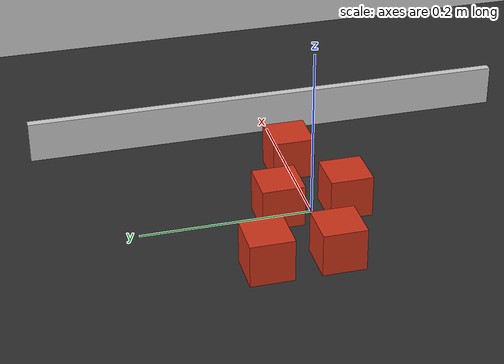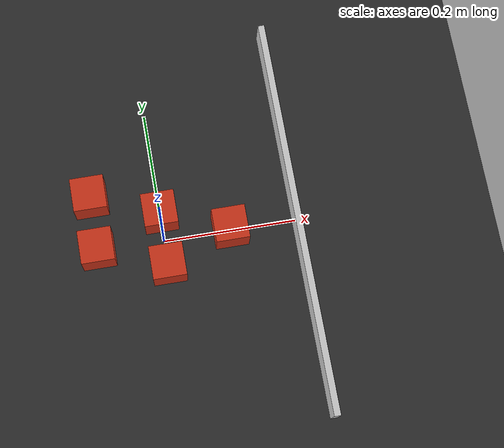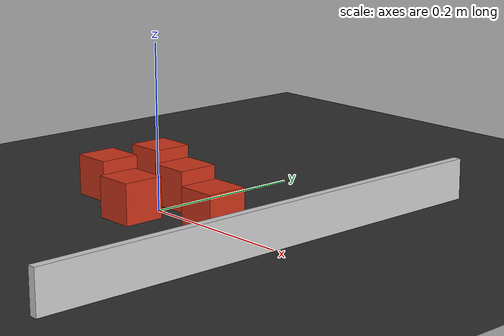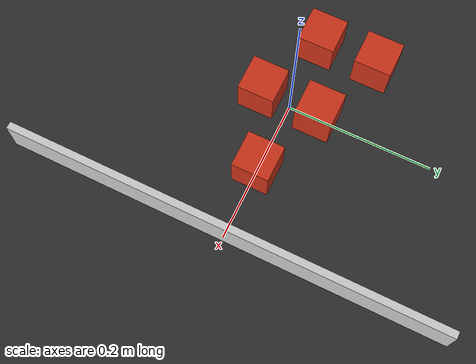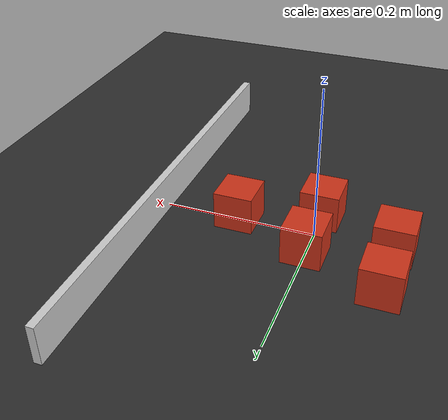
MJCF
<mujoco model="boxes_free">

    <option timestep=".02"/>
    <size memory="5M"/>

    <asset>
        <texture name='cube_surface' file="./iris_block.png" gridsize="3 4" gridlayout=".U..LFRB.D.."/>
        <material name="MatCube" texture="cube_surface" specular="5" shininess=".0"/>

        <texture name="texplane" type="2d" builtin="checker" rgb1=".2 .2 .2" rgb2=".15 0.15 0.15"
                 width="512" height="512" mark="cross" markrgb=".8 .8 .8"/>
        <material name="matplane" reflectance="0.3" texture="texplane" texrepeat="1 1" texuniform="true"/>
    </asset>

    <worldbody>

        <light directional="false" diffuse=".2 .2 .2" specular="0.01 0.01 0.01" pos="0 0 5.0" dir="0 0 -1"
               castshadow="false"/>
        <light directional="true" diffuse=".6 .6 .6" specular="0.0 0.0 0.0" pos="0 0 4" dir="0 0 -1"
               castshadow="false"/>

        <geom name="ground" type="plane" size="0 0 1" pos="0 0 0" quat="1 0 0 0"
              friction="0.5"
              material="matplane" condim="1"/>

        <body name="b1" pos="0.1 0 .025">
            <joint type="free"/>
            <geom name="b1" type="box" size=".025 .025 .025" rgba=".8 .2 .1 1"
                  mass="0.001"
                  friction="0.5" condim="3" material="MatCube"/>
        </body>

        <body name="b2" pos="0.0 0.04 .025">
            <joint type="free"/>
            <geom name="b2" type="box" size=".025 .025 .025" rgba=".8 .2 .1 1"
                  mass="0.001"
                  friction="0.5" condim="3" material="MatCube"/>
        </body>

        <body name="b3" pos="0.0 -0.04 .025">
            <joint type="free"/>
            <geom name="b3" type="box" size=".025 .025 .025" rgba=".8 .2 .1 1"
                  mass="0.001"
                  friction="0.5" condim="3" material="MatCube"/>
        </body>

        <body name="b4" pos="-0.1 0.08 .025">
            <joint type="free"/>
            <geom name="b4" type="box" size=".025 .025 .025" rgba=".8 .2 .1 1"
                  mass="0.001"
                  friction="0.5" condim="3" material="MatCube"/>
        </body>

        <body name="b5" pos="-0.1 0.00 .025">
            <joint type="free"/>
            <geom name="b5" type="box" size=".025 .025 .025" rgba=".8 .2 .1 1"
                  mass="0.001"
                  friction="0.5" condim="3" material="MatCube"/>
        </body>

        <body name="actor" pos="0.2 0. 0.026">
            <joint name="actor" type="slide" axis="1 0 0"/>
            <geom name="actor" type="box" size=".005 0.3 .025" rgba=".8 .8 .8 1" friction="0.0" condim="3"/>
        </body>

    </worldbody>

    <actuator>
        <position name="actor" joint="actor" kp="100" kv="5"/>
    </actuator>

</mujoco>
